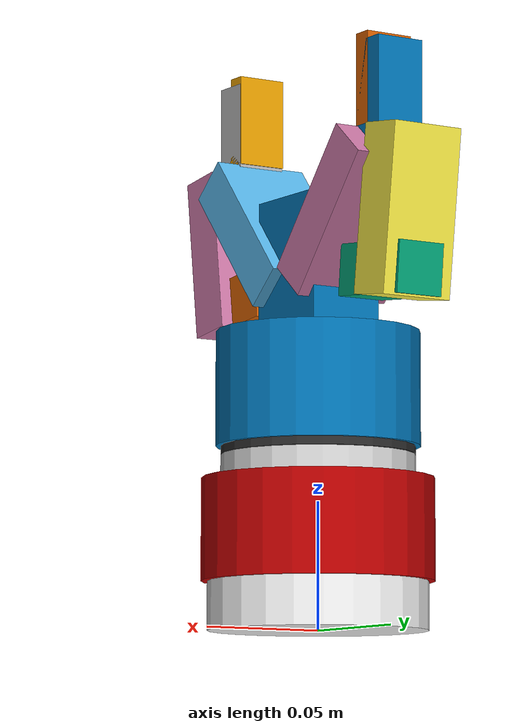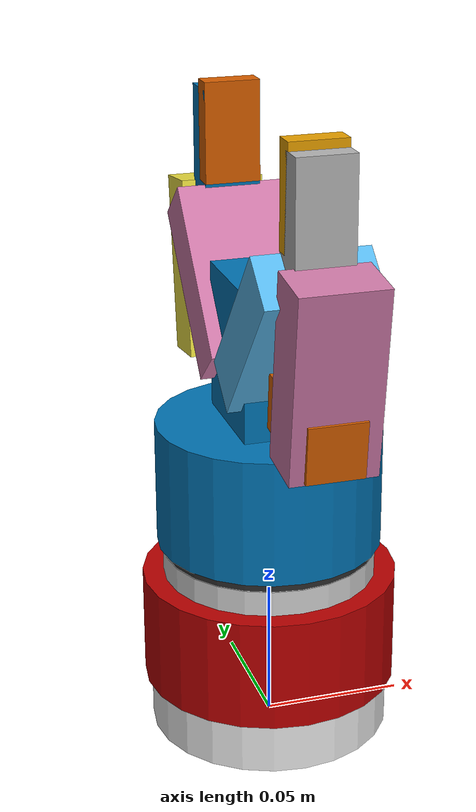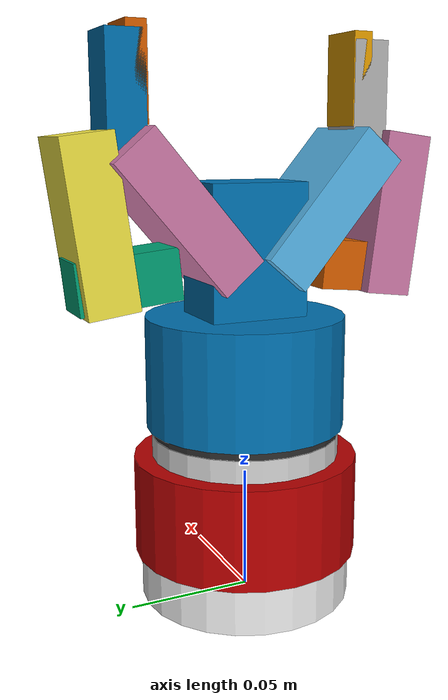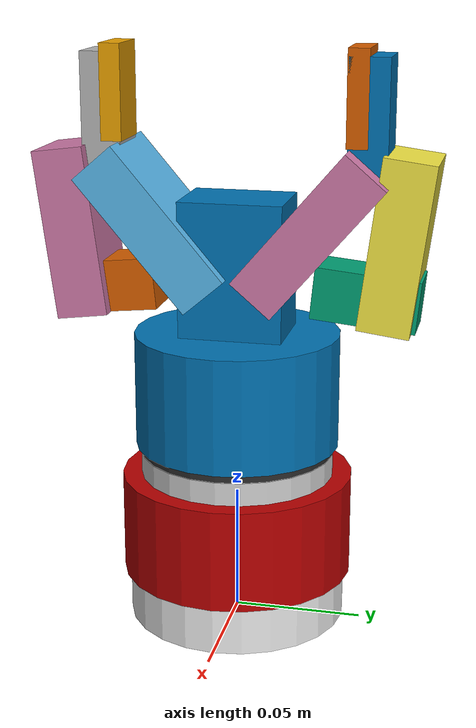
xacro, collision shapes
<?xml version="1.0"?>
<robot name="robotiq_arg2f_80_model" xmlns:xacro="http://ros.org/wiki/xacro">
  <!--Import macro for left arm gripper-->
  <xacro:include filename="$(find robot_description)/urdf/left_gripper_macro.xacro" />
  <!--Create an instance of the left arm gripper macro-->
  <xacro:invite_csda10f_left_gripper prefix="arm_left_"/>

  <!--Base frame for reference-->
  <link name="base_link" />

  <!--Reference Gripper to base joint-->
  <joint name="world_joint" type="fixed">
    <parent link="base_link" />
    <child link="arm_left_link_force_sensor_adapter_plate" />
    <origin xyz="0 0 0" rpy="0 0 0"/>
    <axis xyz="0 0 1"/>
  </joint>
</robot>

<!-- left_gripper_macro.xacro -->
<robot xmlns:xacro="http://ros.org/wiki/xacro">
	<xacro:macro name="invite_csda10f_left_gripper" params="prefix">
		<!--Import macro from 2-finger adaptative robotiq gripper-->
		<xacro:include filename="$(find robotiq_2f_model)/model/robotiq_2f_85.urdf.xacro" />

<!--LINKS********************************************************************************************************************************-->
		<!--Aluminium Adapter plate for Robotiq coupling and CSDA10F arm flange-->
		<link name="${prefix}link_gripper_adapter_plate">
			<visual>
				<origin rpy="0 0 0" xyz="0 0 0"/>
				<geometry>
					<mesh filename="package://robot_description/meshes/robotiq-yaskawa_adapter_plate.stl" scale="0.001 0.001 0.001"/>
				</geometry>
				<material name="Aluminium">
  			        <color rgba="0.816 0.816 0.816 1.0"/>
  				</material>
			</visual>
			<collision>
				<origin rpy="${pi/2} 0 0" xyz="0 0.0045 0"/>
				<geometry>
					<cylinder length="0.009" radius="0.038"/>
				</geometry>
				<material name="yellow"/>
			</collision>
		</link>

		<!--Robotiq coupling, that connects the gripper with the Adapter plate; this part host the cable connections of the gripper-->
		<link name="${prefix}link_robotiq_coupling">
			<visual>
				<origin rpy="0 0 0" xyz="0 0 0"/>
				<geometry>
					<mesh filename="package://robot_description/meshes/robotiq_gripper_coupling.stl" scale="0.001 0.001 0.001"/>
				</geometry>
				<material name="light_balck">
  			        <color rgba="0.17 0.17 0.17 1.0"/>
  				</material>
			</visual>
			<collision>
				<origin rpy="0 0 0" xyz="0 0 0"/>
				<geometry>
					<cylinder length="0.0135" radius="0.038"/>
				</geometry>
				<material name="yellow"/>
			</collision>
		</link>-->
		<!--Dynpick adaptor plate, which connects the force sensor with the robot flange-->
		<link name="${prefix}link_force_sensor_adapter_plate">
			<visual>
				<origin rpy="0 0 0" xyz="0.00 0 0.0095"/>
				<geometry>
					<cylinder length="0.019" radius="0.043"/>
				</geometry>
				<material name="aluminium">
  			        <color rgba="0.917 0.917 0.917 1.0"/>
  				</material>
			</visual>
			<collision>
				<origin rpy="0 0 0" xyz="0 0 0.0095"/>
				<geometry>
					<cylinder length="0.019" radius="0.043"/>
				</geometry>
				<material name="yellow"/>
			</collision>
		</link>-->
		<!--Dynpick adaptor plate, which connects the force sensor with the robot flange-->
		<link name="${prefix}link_force_sensor">
			<visual>
				<origin rpy="0 0 0" xyz="0 0 0"/>
				<geometry>
					<cylinder length="0.040" radius="0.045"/>
				</geometry>
				<material name="red-aluminium">
  			        <color rgba="0.721 0 0 1.0"/>
  				</material>
			</visual>
			<collision>
				<origin rpy="0 0 0" xyz="0 0 0"/>
				<geometry>
					<cylinder length="0.040" radius="0.0455"/>
				</geometry>
				<material name="yellow"/>
			</collision>
		</link>-->

<!--Joints ******************************************************************************************************************-->
		<!--Joint force sensor adaptor plate to force sensor-->
		<joint name="${prefix}gripper_flange_joint" type="fixed">
			<origin  xyz="0 0 0.039" rpy="0 0 0"/>
			<parent link="${prefix}link_force_sensor_adapter_plate" />
			<child link="${prefix}link_force_sensor" />
		</joint>

		<!--Joint from the force sensor to the gripper adaptor plate-->
		<joint name="${prefix}gripper_force_sensor_joint" type="fixed">
			<origin  xyz="0 0 0.02" rpy="${pi/2} 0 0"/>
			<parent link="${prefix}link_force_sensor" />
			<child link="${prefix}link_gripper_adapter_plate" />
		</joint>

		<!--Joint from the adapter plate to the robotiq gripper coupling-->
		<joint name="${prefix}gripper_coupling_joint" type="fixed">
			<origin  xyz="0 0.0160 0" rpy="${-pi/2} 0 0"/>
			<parent link="${prefix}link_gripper_adapter_plate" />
			<child link="${prefix}link_robotiq_coupling" />
		</joint>

		<!--ROBOTIQ 85mm Gripper instance creation-->
		<xacro:robotiq_2f_85 name="arm_left" parent="${prefix}link_robotiq_coupling" precise_collision="false" adaptive_transmission="false">
			<origin xyz="0 0 0.0039" rpy="0 0 ${pi}"/>
		</xacro:robotiq_2f_85>

	</xacro:macro>
</robot>

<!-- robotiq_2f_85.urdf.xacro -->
<!-- length is along the z-axis! -->

<robot xmlns:xacro="http://ros.org/wiki/xacro">
	<xacro:macro name="robotiq_2f_85" params="parent name precise_collision:=false adaptive_transmission:=false with_pads:=true *origin">

		<!-- base -->
		<joint name="${parent}_${name}_base_joint" type="fixed">
			<xacro:insert_block name="origin"/>
			<parent link="${parent}"/>
			<child link="${name}_base"/>
		</joint>
		<link name="${name}_base">
			<visual>
				<geometry>
					<mesh filename="package://robotiq_2f_model/model/meshes/2f85/visual/base.dae" scale="0.001 0.001 0.001"/>
				</geometry>
			</visual>
			<xacro:unless value="${precise_collision}">
			<collision>
				<origin xyz="0 0 0.015" rpy="0 0 0"/>
				<geometry>
					<cylinder radius="0.04" length="0.045"/>
				</geometry>
			</collision>
			<collision>
				<origin xyz="0 0 0.06" rpy="0 0 0"/>
				<geometry>
					<box size="0.03 0.04 0.06"/>
				</geometry>
			</collision>
			</xacro:unless>
			<xacro:if value="${precise_collision}">
			<collision>
				<geometry>
					<mesh filename="package://robotiq_2f_model/model/meshes/2f85/collision/base.stl" scale="0.001 0.001 0.001"/>
				</geometry>
			</collision>
			</xacro:if>
		</link>

		<!-- right finger -->

		<joint name="${name}_right_driver_joint" type="revolute">
			<origin xyz="0 0.0306011 0.054904" rpy="0 0 0"/>
			<parent link="${name}_base"/>
			<child link="${name}_right_driver"/>
			<axis xyz="1 0 0"/>
			<limit lower="${0 * 3.141592 / 180}" upper="${50 * 3.141592 / 180}" effort="60" velocity="${110 * 3.141592 / 180}" />
		</joint>
		<link name="${name}_right_driver">
			<visual>
				<geometry>
					<mesh filename="package://robotiq_2f_model/model/meshes/2f85/visual/driver.dae" scale="0.001 0.001 0.001"/>
				</geometry>
			</visual>
			<xacro:unless value="${precise_collision}">
			<collision>
				<origin xyz="0 0.02 0" rpy="-0.1 0 0"/>
				<geometry>
					<box size="0.02 0.04 0.02"/>
				</geometry>
			</collision>
			</xacro:unless>
			<xacro:if value="${precise_collision}">
			<collision>
				<geometry>
					<mesh filename="package://robotiq_2f_model/model/meshes/2f85/collision/driver.stl" scale="0.001 0.001 0.001"/>
				</geometry>
			</collision>
			</xacro:if>
		</link>

		<xacro:unless value="${adaptive_transmission}">
		<joint name="${name}_right_coupler_joint" type="fixed">
			<origin xyz="0 0.0315 -0.0041" rpy="0 0 0"/>
			<parent link="${name}_right_driver"/>
			<child link="${name}_right_coupler"/>
		</joint>
		</xacro:unless>
		<xacro:if value="${adaptive_transmission}">
			<joint name="${name}_right_coupler_joint" type="revolute">
			<origin xyz="0 0.0315 -0.0041" rpy="0 0 0"/>
			<parent link="${name}_right_driver"/>
			<child link="${name}_right_coupler"/>
			<axis xyz="1 0 0"/>
			<limit lower="${-170 * 3.141592 / 180}" upper="${170 * 3.141592 / 180}" effort="176" velocity="${110 * 3.141592 / 180}" />
		</joint>
		</xacro:if>
		<link name="${name}_right_coupler">
			<visual>
				<geometry>
					<mesh filename="package://robotiq_2f_model/model/meshes/2f85/visual/coupler.dae" scale="0.001 0.001 0.001"/>
				</geometry>
			</visual>
			<xacro:unless value="${precise_collision}">
			<collision>
				<origin xyz="0 0.0 0.025" rpy="-1.7 0 0"/>
				<geometry>
					<box size="0.03 0.065 0.02"/>
				</geometry>
			</collision>
			</xacro:unless>
			<xacro:if value="${precise_collision}">
				<collision>
					<geometry>
						<mesh filename="package://robotiq_2f_model/model/meshes/2f85/collision/coupler.stl" scale="0.001 0.001 0.001"/>
					</geometry>
				</collision>
			</xacro:if>
		</link>

		<joint name="${name}_right_follower_joint" type="revolute">
			<origin xyz="0 0.0061 0.0471" rpy="0 0 0"/>
			<parent link="${name}_right_coupler"/>
			<child link="${name}_right_follower"/>
			<axis xyz="1 0 0"/>
			<limit lower="${-170 * 3.141592 / 180}" upper="${170 * 3.141592 / 180}" effort="176" velocity="${110 * 3.141592 / 180}" />

			<xacro:unless value="${adaptive_transmission}">
			<mimic joint="${name}_right_driver_joint" multiplier="-1"/>
			</xacro:unless>
		</joint>
		<link name="${name}_right_follower">
			<visual>
				<geometry>
					<mesh filename="package://robotiq_2f_model/model/meshes/2f85/visual/follower.dae" scale="0.001 0.001 0.001"/>
				</geometry>
			</visual>
			<xacro:unless value="${precise_collision}">
			<collision>
				<origin xyz="0 -0.018 0.022" rpy="0 0 0"/>
				<geometry>
					<box size="0.02 0.015 0.048"/>
				</geometry>
			</collision>
			</xacro:unless>
			<xacro:if value="${precise_collision}">
			<collision>
				<geometry>
					<mesh filename="package://robotiq_2f_model/model/meshes/2f85/collision/follower.stl" scale="0.001 0.001 0.001"/>
				</geometry>
			</collision>
			</xacro:if>
		</link>

		<joint name="${name}_right_pad_joint" type="fixed">
			<parent link="${name}_right_follower"/>
			<child link="${name}_right_pad"/>
		</joint>
		<link name="${name}_right_pad">
			<visual>
				<geometry>
					<mesh filename="package://robotiq_2f_model/model/meshes/2f85/visual/pad.dae" scale="0.001 0.001 0.001"/>
				</geometry>
			</visual>
			<xacro:unless value="${precise_collision}">
			<collision>
				<origin xyz="0 -0.022 0.031" rpy="0 0 0"/>
				<geometry>
					<box size="0.02 0.008 0.036"/>
				</geometry>
			</collision>
			</xacro:unless>
			<xacro:if value="${precise_collision}">
			<collision>
				<geometry>
					<mesh filename="package://robotiq_2f_model/model/meshes/2f85/collision/pad.stl" scale="0.001 0.001 0.001"/>
				</geometry>
			</collision>
			</xacro:if>
		</link>

		<joint name="${name}_right_spring_link_joint" type="revolute">
			<origin xyz="0 0.012 0.0614" rpy="0 0 0"/>
			<parent link="${name}_base"/>
			<child link="${name}_right_spring_link"/>
			<axis xyz="1 0 0"/>
			<limit lower="${-170 * 3.141592 / 180}" upper="${170 * 3.141592 / 180}" effort="176" velocity="${110 * 3.141592 / 180}" />

			<xacro:unless value="${adaptive_transmission}">
			<mimic joint="${name}_right_driver_joint" multiplier="1"/>
			</xacro:unless>
		</joint>
		<link name="${name}_right_spring_link">
			<visual>
				<geometry>
					<mesh filename="package://robotiq_2f_model/model/meshes/2f85/visual/spring_link.dae" scale="0.001 0.001 0.001"/>
				</geometry>
			</visual>
			<xacro:unless value="${precise_collision}">
			<collision>
				<origin xyz="0 0.018 0.018" rpy="-0.7068 0 0"/>
				<geometry>
					<box size="0.04 0.02 0.065"/>
				</geometry>
			</collision>
			</xacro:unless>
			<xacro:if value="${precise_collision}">
			<collision>
				<geometry>
					<mesh filename="package://robotiq_2f_model/model/meshes/2f85/collision/spring_link.stl" scale="0.001 0.001 0.001"/>
				</geometry>
			</collision>
			</xacro:if>
		</link>

		<!-- left finger -->

		<joint name="${name}_left_driver_joint" type="revolute">
			<origin xyz="0 -0.0306011 0.054904" rpy="0 0 3.141592653589793"/>
			<parent link="${name}_base"/>
			<child link="${name}_left_driver"/>
			<axis xyz="1 0 0"/>
			<limit lower="${0 * 3.141592 / 180}" upper="${41 * 3.141592 / 180}" effort="176" velocity="${110 * 3.141592 / 180}" />

			<xacro:unless value="${adaptive_transmission}">
			<mimic joint="${name}_right_driver_joint" multiplier="1"/>
			</xacro:unless>
		</joint>
		<link name="${name}_left_driver">
			<visual>
				<geometry>
					<mesh filename="package://robotiq_2f_model/model/meshes/2f85/visual/driver.dae" scale="0.001 0.001 0.001"/>
				</geometry>
			</visual>
			<xacro:unless value="${precise_collision}">
			<collision>
				<origin xyz="0 0.02 0" rpy="-0.1 0 0"/>
				<geometry>
					<box size="0.02 0.04 0.02"/>
				</geometry>
			</collision>
			</xacro:unless>
			<xacro:if value="${precise_collision}">
			<collision>
				<geometry>
					<mesh filename="package://robotiq_2f_model/model/meshes/2f85/collision/driver.stl" scale="0.001 0.001 0.001"/>
				</geometry>
			</collision>
			</xacro:if>
		</link>

		<xacro:unless value="${adaptive_transmission}">
		<joint name="${name}_left_coupler_joint" type="fixed">
			<origin xyz="0 0.0315 -0.0041" rpy="0 0 0"/>
			<parent link="${name}_left_driver"/>
			<child link="${name}_left_coupler"/>
		</joint>
		</xacro:unless>
		<xacro:if value="${adaptive_transmission}">
			<joint name="${name}_left_coupler_joint" type="revolute">
			<origin xyz="0 0.0315 -0.0041" rpy="0 0 0"/>
			<parent link="${name}_left_driver"/>
			<child link="${name}_left_coupler"/>
			<axis xyz="1 0 0"/>
			<limit lower="${-170 * 3.141592 / 180}" upper="${170 * 3.141592 / 180}" effort="176" velocity="${110 * 3.141592 / 180}" />
		</joint>
		</xacro:if>
		<link name="${name}_left_coupler">
			<visual>
				<geometry>
					<mesh filename="package://robotiq_2f_model/model/meshes/2f85/visual/coupler.dae" scale="0.001 0.001 0.001"/>
				</geometry>
			</visual>
			<xacro:unless value="${precise_collision}">
			<collision>
				<origin xyz="0 0.0 0.025" rpy="-1.7 0 0"/>
				<geometry>
					<box size="0.03 0.065 0.02"/>
				</geometry>
			</collision>
			</xacro:unless>
			<xacro:if value="${precise_collision}">
				<collision>
					<geometry>
						<mesh filename="package://robotiq_2f_model/model/meshes/2f85/collision/coupler.stl" scale="0.001 0.001 0.001"/>
					</geometry>
				</collision>
			</xacro:if>
		</link>

		<joint name="${name}_left_follower_joint" type="revolute">
			<origin xyz="0 0.0061 0.0471" rpy="0 0 0"/>
			<parent link="${name}_left_coupler"/>
			<child link="${name}_left_follower"/>
			<axis xyz="1 0 0"/>
			<limit lower="${-170 * 3.141592 / 180}" upper="${170 * 3.141592 / 180}" effort="176" velocity="${110 * 3.141592 / 180}" />

			<xacro:unless value="${adaptive_transmission}">
			<mimic joint="${name}_right_driver_joint" multiplier="-1"/>
			</xacro:unless>
		</joint>
		<link name="${name}_left_follower">
			<visual>
				<geometry>
					<mesh filename="package://robotiq_2f_model/model/meshes/2f85/visual/follower.dae" scale="0.001 0.001 0.001"/>
				</geometry>
			</visual>
			<xacro:unless value="${precise_collision}">
			<collision>
				<origin xyz="0 -0.018 0.022" rpy="0 0 0"/>
				<geometry>
					<box size="0.02 0.015 0.048"/>
				</geometry>
			</collision>
			</xacro:unless>
			<xacro:if value="${precise_collision}">
			<collision>
				<geometry>
					<mesh filename="package://robotiq_2f_model/model/meshes/2f85/collision/follower.stl" scale="0.001 0.001 0.001"/>
				</geometry>
			</collision>
			</xacro:if>
		</link>

		<joint name="${name}_left_pad_joint" type="fixed">
			<parent link="${name}_left_follower"/>
			<child link="${name}_left_pad"/>
		</joint>
		<link name="${name}_left_pad">
			<visual>
				<geometry>
					<mesh filename="package://robotiq_2f_model/model/meshes/2f85/visual/pad.dae" scale="0.001 0.001 0.001"/>
				</geometry>
			</visual>
			<xacro:unless value="${precise_collision}">
			<collision>
				<origin xyz="0 -0.022 0.031" rpy="0 0 0"/>
				<geometry>
					<box size="0.02 0.008 0.036"/>
				</geometry>
			</collision>
			</xacro:unless>
			<xacro:if value="${precise_collision}">
			<collision>
				<geometry>
					<mesh filename="package://robotiq_2f_model/model/meshes/2f85/collision/pad.stl" scale="0.001 0.001 0.001"/>
				</geometry>
			</collision>
			</xacro:if>
		</link>

		<joint name="${name}_left_spring_link_joint" type="revolute">
			<origin xyz="0 -0.012 0.0614" rpy="0 0 3.141592653589793"/>
			<parent link="${name}_base"/>
			<child link="${name}_left_spring_link"/>
			<axis xyz="1 0 0"/>
			<limit lower="${-170 * 3.141592 / 180}" upper="${170 * 3.141592 / 180}" effort="176" velocity="${110 * 3.141592 / 180}" />

			<xacro:unless value="${adaptive_transmission}">
			<mimic joint="${name}_right_driver_joint" multiplier="1"/>
			</xacro:unless>
		</joint>
		<link name="${name}_left_spring_link">
			<visual>
				<geometry>
					<mesh filename="package://robotiq_2f_model/model/meshes/2f85/visual/spring_link.dae" scale="0.001 0.001 0.001"/>
				</geometry>
			</visual>
			<xacro:unless value="${precise_collision}">
			<collision>
				<origin xyz="0 0.018 0.018" rpy="-0.7068 0 0"/>
				<geometry>
					<box size="0.04 0.02 0.065"/>
				</geometry>
			</collision>
			</xacro:unless>
			<xacro:if value="${precise_collision}">
			<collision>
				<geometry>
					<mesh filename="package://robotiq_2f_model/model/meshes/2f85/collision/spring_link.stl" scale="0.001 0.001 0.001"/>
				</geometry>
			</collision>
			</xacro:if>
		</link>

		<transmission name="${name}_right_driver_trans">
			<type>transmission_interface/SimpleTransmission</type>
			<joint name="${name}_right_driver_joint">
				<hardwareInterface>hardware_interface/PositionJointInterface</hardwareInterface>
			</joint>
			<actuator name="${name}_right_driver_motor">
				<mechanicalReduction>1</mechanicalReduction>
			</actuator>
		</transmission>
	</xacro:macro>
</robot>
